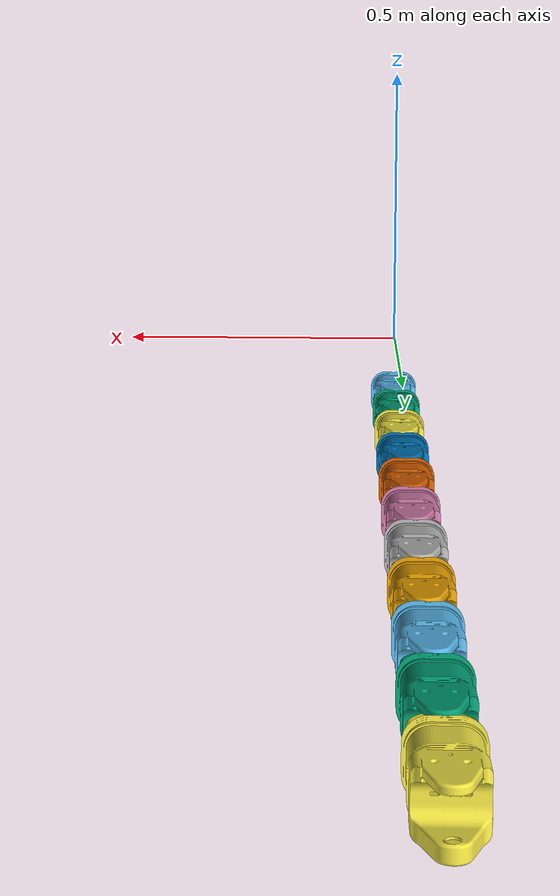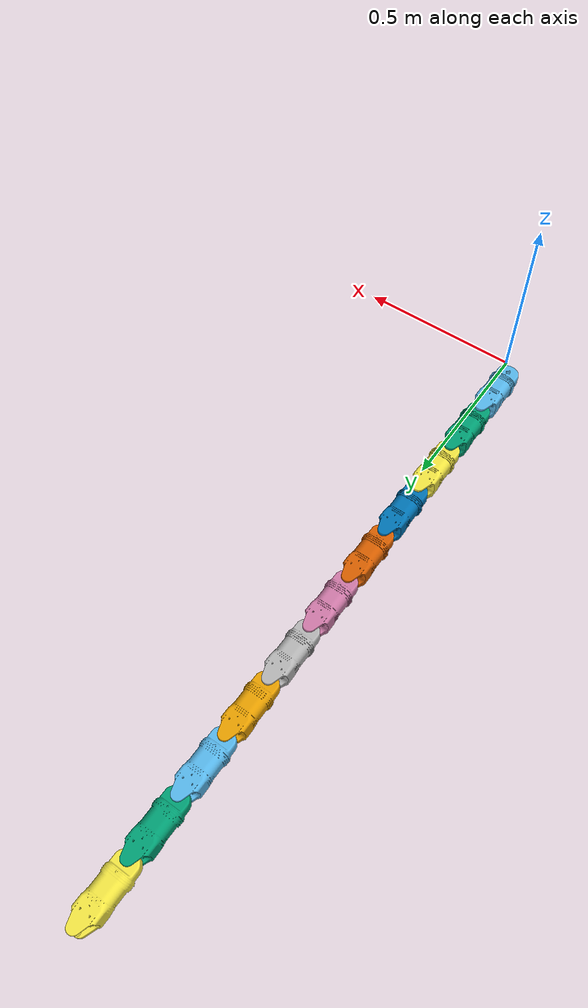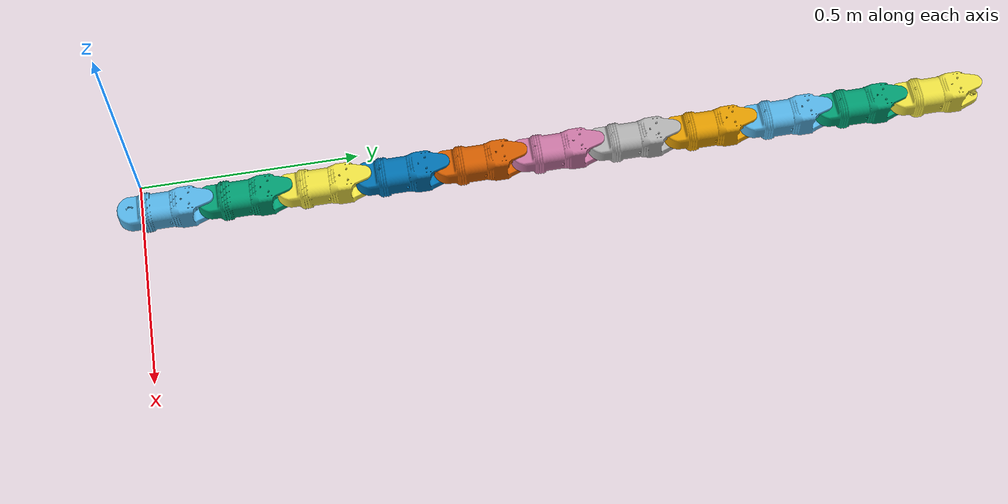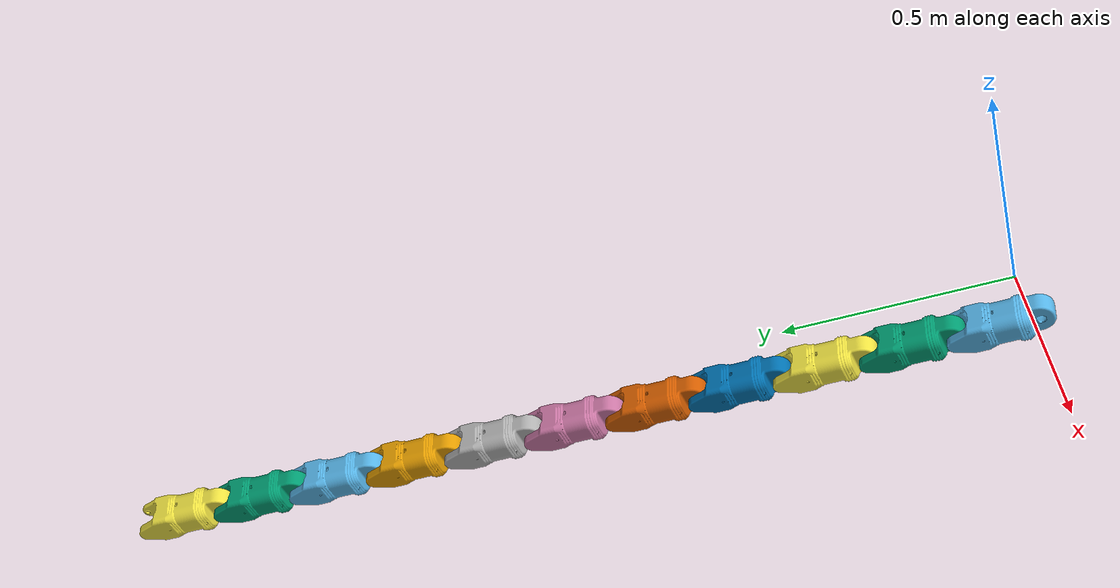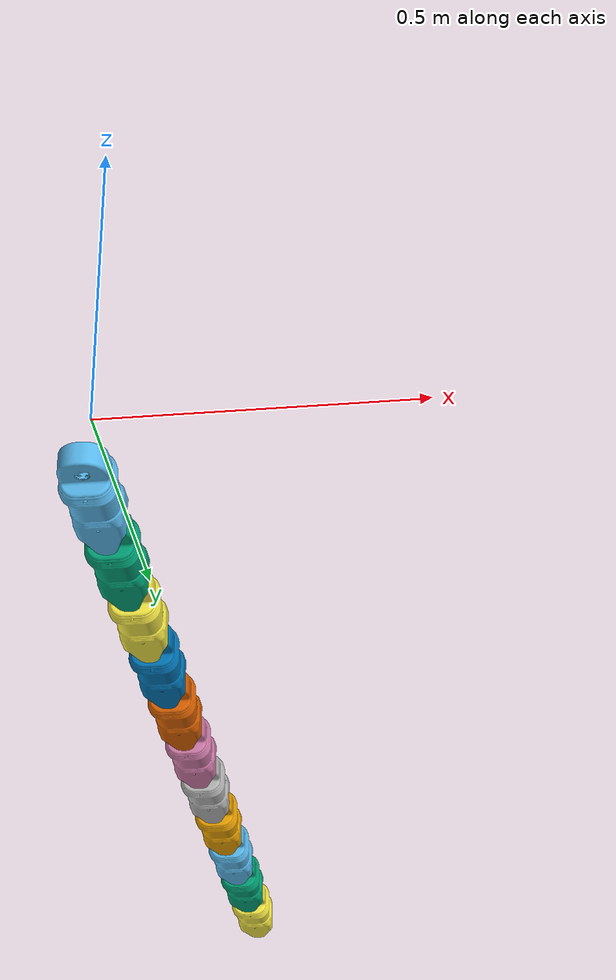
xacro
<?xml version='1.0' encoding='UTF-8'?>

<robot xmlns:xacro="http://www.ros.org/wiki/xacro" name="serpens_model">
<!-- Width, height, depth, mass -->
    <xacro:property name="w" value="0.0765"/>
    <xacro:property name="h" value="0.080"/>
    <xacro:property name="d" value="0.0050"/>
    <xacro:property name="m" value="0.22703"/>
<!-- Friction coefficients along each axis of the surface -->
    <xacro:property name="mu1" value="0.75"/>
    <xacro:property name="mu2" value="0.75"/>
    <xacro:property name="fdir1" value="0 0 0"/>

    <xacro:property name="disp_coeff" value="0.0075"/>

    <xacro:property name="displacement_0" value="0 0 0"/>
    <xacro:property name="displacement" value="0 ${disp_coeff} 0"/>
    <xacro:property name="displacement_2" value="0 ${2 * disp_coeff} 0"/>

    <xacro:property name="yaw_axis" value="0 0 1"/>
    <xacro:property name="pitch_axis" value="0 0 1"/>

    <xacro:property name="col_rpy" value="0 0 0"/>

    <!--Macro for building X amount of links-->
    <xacro:macro name="generic_link" params="suffix displacement">
        <!-- Describe one of the joints -->
        <link name="serpens_link_${suffix}">
            <visual>
                <origin rpy="${col_rpy}" xyz="${displacement}"/>
                <geometry>
                    <mesh filename="$(find single_joint)/meshes/generic_yaw.STL"/>
                </geometry>
            </visual>

            <collision>
                <origin rpy="${col_rpy}" xyz="0 0.04 -0.0125"/>
                <geometry>
                    <box size="${w} ${d / 2} ${h}"/>
                </geometry>
            </collision>
            <collision>
                <origin rpy="${col_rpy}" xyz="0 0.07 -0.0125"/>
                <geometry>
                    <box size="${w} ${d / 2} ${h}"/>
                </geometry>
            </collision>
            <collision>
                <origin rpy="${col_rpy}" xyz="0 0.1 -0.0125"/>
                <geometry>
                    <box size="${w} ${d / 2} ${h}"/>
                </geometry>
            </collision>
            <collision>
                <origin rpy="${col_rpy}" xyz="0 0.130 -0.0125"/>
                <geometry>
                    <box size="${w} ${d / 2} ${h}"/>
                </geometry>
            </collision>

            <inertial>
                <!-- Why not col_rpy for rpy? -->
                <origin rpy="0 0 0" xyz="${displacement}"/>
                <mass value="${m}"/>
                <inertia ixx="0" ixy="0" ixz="0"
                         iyy="0" iyz="0" izz="0"/>

                <!-- Theoric inertia tensor for solid cuboid, removed for some reason, to be tested -->
            </inertial>
        </link>

        <gazebo reference="serpens_link_${suffix}">
            <selfCollide>true</selfCollide>
            <mu1>${mu1}</mu1>
            <mu2>${mu2}</mu2>
            <fdir1>${fdir1}</fdir1>
        </gazebo>
    </xacro:macro>

    <!--Macro for building X amount of joints-->
    <xacro:macro name="generic_joint" params="suffix displacement axis">
        <!-- Revolute means hinge with limit values -->
        <joint name="joint_${suffix}_motor" type="revolute">
            <axis xyz="${axis}"/>
            <!-- +-90° for our joint  -->
            <limit effort="60" lower="-1.498" upper="1.498" velocity="15"/>
            <origin rpy="0 0 0" xyz="${displacement}"/>
            <parent link="serpens_link_${suffix}"/>
            <child link="serpens_link_${suffix + 1}"/>
        </joint>
        <gazebo reference="joint_${suffix}_motor"/>
        <!-- transmission describes relationship between motor(actuator) and joint -->
        <transmission name="motor_${suffix}_tran">
            <type>transmission_interface/SimpleTransmission</type>
            <joint name="joint_${suffix}_motor">
                <hardwareInterface>hardware_interface/EffortJointInterface</hardwareInterface>
            </joint>
            <actuator name="motor_${suffix}">
                <hardwareInterface>hardware_interface/EffortJointInterface</hardwareInterface>
                <mechanicalReduction>1</mechanicalReduction>
            </actuator>
        </transmission>
    </xacro:macro>

    <link name="base"/>

    <joint name="fixed" type="fixed">
        <parent link="base"/>
        <child link="serpens_link_1"/>
    </joint>

    <link name="serpens_link_1">
        <visual>
            <origin rpy="0 0 0" xyz="0 0 0"/>
            <geometry>
                <mesh filename="$(find single_joint)/meshes/generic_yaw.STL"/>
            </geometry>
        </visual>

        <collision>
            <origin rpy="0 0 0" xyz="0 0 -0.1075"/>
            <geometry>
                <box size="${w} ${d / 2} ${h}"/>
            </geometry>
        </collision>
        <collision>
            <origin rpy="0 0 0" xyz="0 0.030 -0.1075"/>
            <geometry>
                <box size="${w} ${d / 2} ${h}"/>
            </geometry>
        </collision>
        <collision>
            <origin rpy="0 0 0" xyz="0 0.060 -0.1075"/>
            <geometry>
                <box size="${w} ${d / 2} ${h}"/>
            </geometry>
        </collision>
        <collision>
            <origin rpy="0 0 0" xyz="0 0.09 -0.1075"/>
            <geometry>
                <box size="${w} ${d / 2} ${h}"/>
            </geometry>
        </collision>

        <inertial>
            <origin rpy="0 0 0" xyz="0 0 0"/>
            <mass value="${m}"/>
            <inertia ixx="0" ixy="0" ixz="0"
                     iyy="0" iyz="0" izz="0"/>
        </inertial>
    </link>

    <gazebo reference="serpens_link__1">
        <selfCollide>true</selfCollide>
        <mu1>${mu1}</mu1>
        <mu2>${mu2}</mu2>
        <fdir1>${fdir1}</fdir1>
    </gazebo>

    <xacro:generic_link suffix="2" displacement="0 0.0415 0.095"/>
    <xacro:generic_link suffix="3" displacement="0 0.0415 0.095"/>
    <xacro:generic_link suffix="4" displacement="0 0.0415 0.095"/>
    <xacro:generic_link suffix="5" displacement="0 0.0415 0.095"/>
    <xacro:generic_link suffix="6" displacement="0 0.0415 0.095"/>
    <xacro:generic_link suffix="7" displacement="0 0.0415 0.095"/>
    <xacro:generic_link suffix="8" displacement="0 0.0415 0.095"/>
    <xacro:generic_link suffix="9" displacement="0 0.0415 0.095"/>
    <xacro:generic_link suffix="10" displacement="0 0.0415 0.095"/>
    <xacro:generic_link suffix="11" displacement="0 0.0415 0.095"/>

    <xacro:generic_joint suffix="1" displacement="0 0.14375 -0.095" axis="${pitch_axis}"/>
    <xacro:generic_joint suffix="2" displacement="0 0.18590 0" axis="${pitch_axis}"/>
    <xacro:generic_joint suffix="3" displacement="0 0.18590 0" axis="${pitch_axis}"/>
    <xacro:generic_joint suffix="4" displacement="0 0.18590 0" axis="${pitch_axis}"/>
    <xacro:generic_joint suffix="5" displacement="0 0.18590 0" axis="${pitch_axis}"/>
    <xacro:generic_joint suffix="6" displacement="0 0.18590 0" axis="${pitch_axis}"/>
    <xacro:generic_joint suffix="7" displacement="0 0.18590 0" axis="${pitch_axis}"/>
    <xacro:generic_joint suffix="8" displacement="0 0.18590 0" axis="${pitch_axis}"/>
    <xacro:generic_joint suffix="9" displacement="0 0.18590 0" axis="${pitch_axis}"/>
    <xacro:generic_joint suffix="10" displacement="0 0.18590 0" axis="${pitch_axis}"/>

    <gazebo>
        <plugin filename="libgazebo_ros_control.so" name="gazebo_ros_control">
            <robotNamespace>/</robotNamespace>
            <robotSimType>gazebo_ros_control/DefaultRobotHWSim</robotSimType>
        </plugin>
    </gazebo>
</robot>
